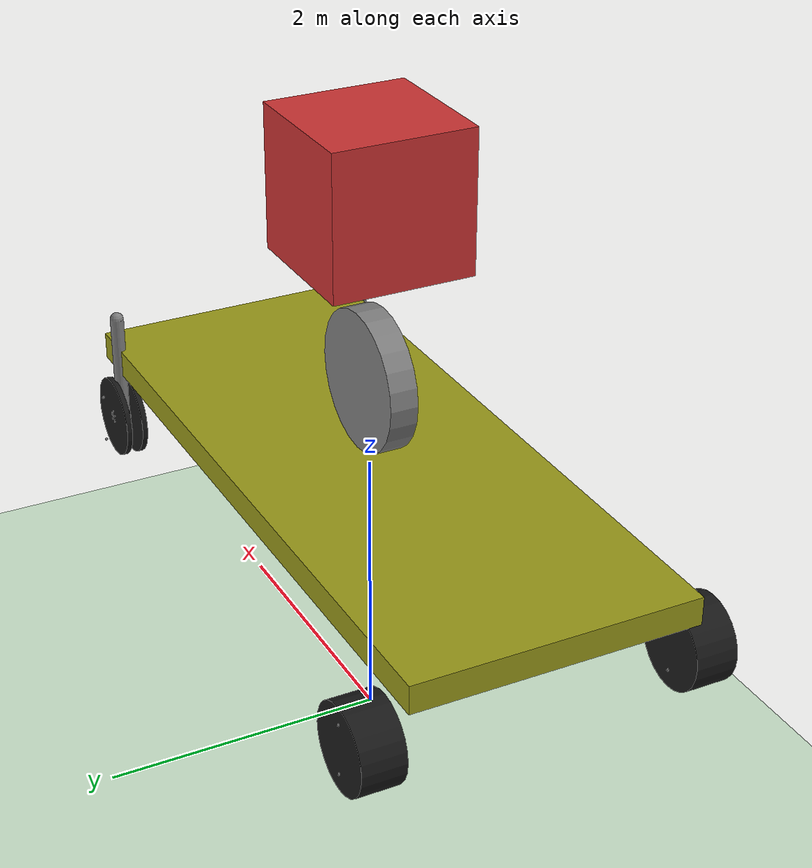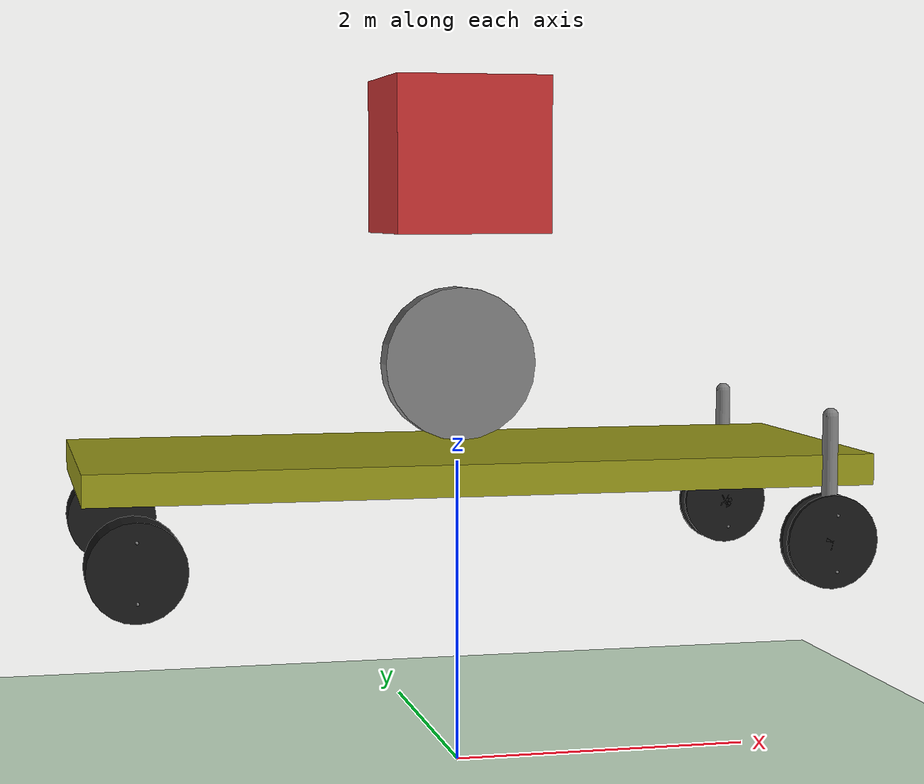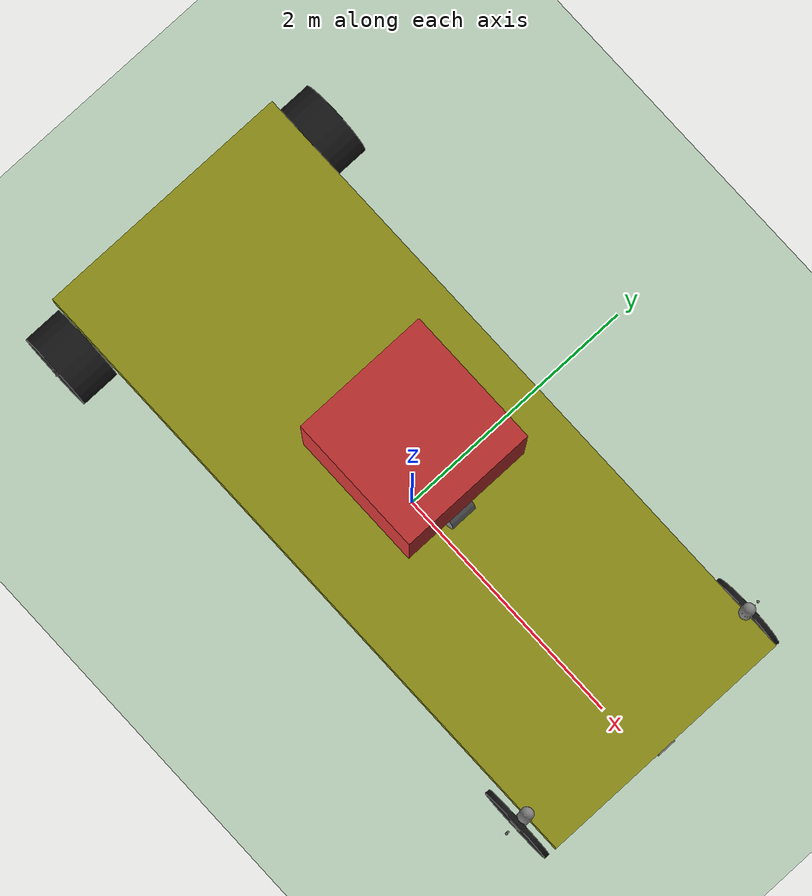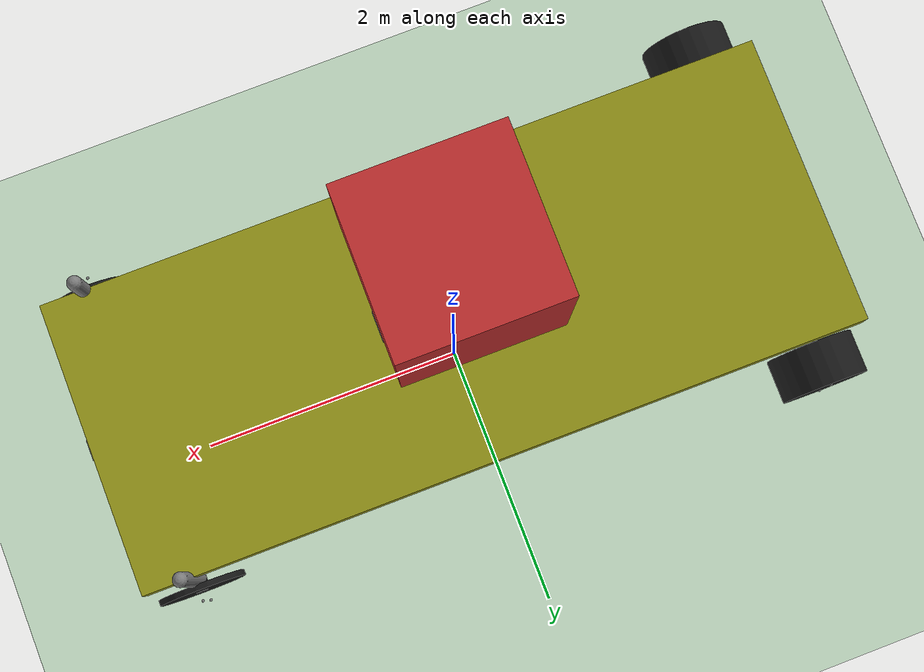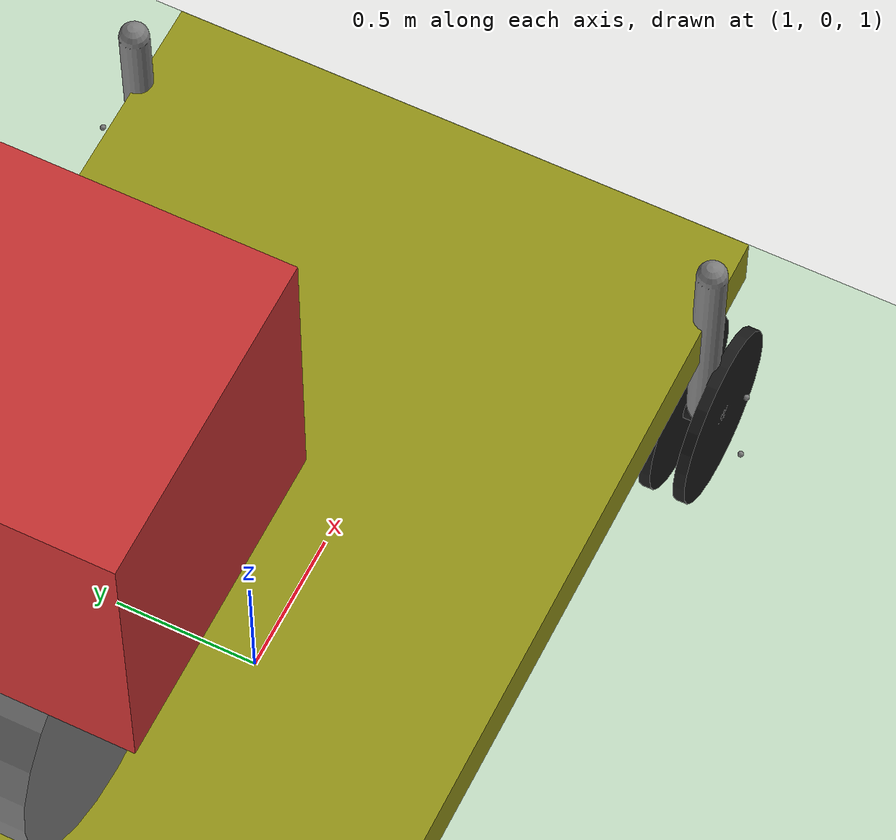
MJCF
<mujoco model="rover4We (v0.2)">

    <compiler inertiafromgeom="true" angle="degree"/>
	<option	timestep="0.006" gravity="0 0 -9.81"/>

	<asset>
		<material name="MatWheel" specular="1" rgba=".1 .1 .1 1"/>
		<material name="MatBody" specular="1" rgba=".6 .6 .1 1"/>
	</asset>

	<default>
		<!--making every geom collidable. expect those that dont are default-->
		<geom contype="1" conaffinity="1"/>
	</default>

	<default class="main">
		<!--solver impedance and reference(?) for ackerman equality constraint-->
		<!--default solimp: "0.900 0.950 0.001"-->
		<!--default solref: "0.020 1.000"-->
		<!--solref: (timeconst, dampratio)
			b = 2 / (dmax * timeconst)
			k = d(r) / (dmax * dmax * timeconst * timeconst * dampratio * dampratio)
		-->
		<equality solimp="0.9950 0.9990 0.0001" solref="0.0100 0.7500"/>
	</default>

	<visual>
		<headlight active="1"/>
		<scale camera=".5"/>
		<map znear="0.001" zfar="1000"/>
	</visual>

    <worldbody>
		<geom conaffinity="1" condim="3" name="floor" pos="0 0 0" rgba="0.8 0.9 0.8 1" size="0 0 0.125" type="plane"/>

		<body name="rover" pos="0 0 2">

			<light name="lamp" active="true" directional="true" cutoff="4" exponent="20" diffuse="1 1 1" specular="0 0 0" pos="0 0 2.5" dir="0 0 -1 "/>

			<camera name="first-person" mode="fixed" pos=".22 0 .08" euler="180 -133 -90" fovy="90"/>

			<joint name="centroid" type="free" pos="0 0 0"/>
            <geom name="rover-body" type="box" pos="0 0 0" size="2.5 1 0.1" mass="12" material="MatBody"/>
			<site type="box" size=".01 .07 .07" pos="2.5 0 0"/>
            <site name="load_sensor_1" pos="2.45 0.9 -0.1" size ="0.01 0.01 0.01" type="box" rgba="0.7 0.2 0.4 0.4" />
            <site name="load_sensor_2" pos="2.45 -0.9 -0.1" size ="0.01 0.01 0.01" type="box" rgba="0.7 0.2 0.4 0.4" />
            <site name="load_sensor_3" pos="-2.45 0.9 -0.1" size ="0.01 0.01 0.01" type="box" rgba="0.7 0.2 0.4 0.4" />
            <site name="load_sensor_4" pos="-2.45 -0.9 -0.1" size ="0.01 0.01 0.01" type="box" rgba="0.7 0.2 0.4 0.4" />
            <site name="plate_imu" pos="0 0 0" size ="0.01" type="sphere" rgba="0.7 0.2 0.9 0.5" />
            <body name="r-l-wheel" pos="-2.2 1 -0.45">
                <joint name="r-l-drive-hinge" type="hinge" pos="0 0 0" axis="0 1 0" damping="0.01" />
                <geom type="cylinder" size="0.3" fromto="0 0 0 0 0.3 0" mass=".125" material="MatWheel" condim="4"/>
				<site size=".01" pos="0 0.3 0.18"/>
				<site size=".01" pos="0 0.3 -0.18"/>
				<site size=".01" pos="0 0 0.18"/>
				<site size=".01" pos="0 0 -0.18"/>
            </body>
            <body name="r-r-wheel" pos="-2.2 -1 -0.45">
                <joint name="r-r-drive-hinge" type="hinge" pos="0 0 0" axis="0 1 0" damping="0.01"/>
                <geom type="cylinder" size="0.3" fromto="0 0 0 0 -0.3 0" mass=".125" material="MatWheel" condim="4"/>
				<site size=".01" pos="0 -0.3 0.18"/>
				<site size=".01" pos="0 -0.3 -0.18"/>
				<site size=".01" pos="0 0 0.18"/>
				<site size=".01" pos="0 0 -0.18"/>
            </body>
			<body name="ghost-steer-wheel" pos="0 0 0.65">
                <joint name="ghost-steer-hinge" type="hinge" pos="0 0 0" axis="0 0 1" limited="true" range="-30 30" damping="0"/>
				<geom type="cylinder" size="0.5 0.1" axisangle="1 0 0 90" contype="2" conaffinity="2" mass="0.2"/>
			</body>
			<body name="f-l-wheel" pos="2.2 1 -0.45">
				<geom type="capsule" size = ".05" fromto="0 0 0 0 0 .8" contype="2" conaffinity="2"/>
				<joint name="f-l-steer-hinge" type="hinge" pos="0 0 0" axis="0 0 1" damping="0.01" limited="true" range="-60 60"/>
				<body>
					<geom type="cylinder" size=".05" fromto="0 -0.08 0 0 0.08 0" mass=".125" material="MatWheel"/>
					<body>
						<joint name="f-l-drive-hinge-1" type="hinge" pos="0 0 0" axis="0 1 0" damping="0.01"/>
						<geom type="cylinder" size=".3" fromto="0 -0.08 0 0 -0.04 0" mass=".125" material="MatWheel" condim="4"/>
					<site size=".01" pos="0 -0.15  0.18"/>
					<site size=".01" pos="0 -0.15 -0.18"/>
					</body>
					<body>
						<joint name="f-l-drive-hinge-2" type="hinge" pos="0 0 0" axis="0 1 0" damping="0.01"/>
						<geom type="cylinder" size=".3" fromto="0 .04 0 0 0.08 0" mass=".125" material="MatWheel" condim="4"/>
						<site size=".01" pos="0  0.15  0.18"/>
						<site size=".01" pos="0  0.15 -0.18"/>
					</body>
				</body>
			</body>
			<body name="f-r-wheel" pos="2.2 -1 -0.45">
				<geom type="capsule" size = ".05" fromto="0 0 0 0 0 .8" contype="2" conaffinity="2"/>
				<joint name="f-r-steer-hinge" type="hinge" pos="0 0 0" axis="0 0 1" damping="0.01" limited="true" range="-60 60"/>

				<body>
					<geom type="cylinder" size=".05" fromto="0 -0.08 0 0 0.08 0" mass=".125" material="MatWheel"/>
					<body>
						<joint name="f-l-drive-hinge-3" type="hinge" pos="0 0 0" axis="0 1 0" damping="0.01"/>
						<geom type="cylinder" size=".3" fromto="0 -0.08 0 0 -0.04 0" mass=".125" material="MatWheel" condim="4"/>
					<site size=".01" pos="0 -0.15  0.18"/>
					<site size=".01" pos="0 -0.15 -0.18"/>
					</body>
					<body>
						<joint name="f-l-drive-hinge-4" type="hinge" pos="0 0 0" axis="0 1 0" damping="0.01"/>
						<geom type="cylinder" size=".3" fromto="0 0.04 0 0 0.08 0" mass=".125" material="MatWheel" condim="4"/>
						<site size=".01" pos="0  0.15  0.18"/>
						<site size=".01" pos="0  0.15 -0.18"/>
					</body>
				</body>
			</body>

        </body>
        <body name="box" pos="0 0 4">
            <geom name="box_geom" type="box" size="0.5 0.5 0.5" mass="1" friction="0.4" rgba="0.8 0.2 0.2 1" condim="3"/>
            <inertial mass="1" pos="0.25 0.25 0.25" diaginertia="0.0833 0.0833 0.0833"/>
            <joint name="box_free" type="free"/> <!-- Free motion -->
        </body>
    </worldbody>

	<tendon>
		<fixed name="rear-differential">
			<joint joint="r-l-drive-hinge" coef="1"/>
			<joint joint="r-r-drive-hinge" coef="1"/>
		</fixed>
	</tendon>

    <actuator>
        <motor name="drive" tendon="rear-differential" ctrllimited="true" ctrlrange="0.0 1.0" gear="8"/>
        <motor name="brake" tendon="rear-differential" ctrllimited="true" ctrlrange="-1.0 0.0" gear="8"/>
		<position name="ghost-steer" joint="ghost-steer-hinge" ctrllimited="true" ctrlrange="-.5 .5" gear="10"/>
    </actuator>
    <sensor>
        <force name="load_sensor_1_1" site="load_sensor_1" />
        <force name="load_sensor_2_2" site="load_sensor_2" />
        <force name="load_sensor_3_3" site="load_sensor_3" />
        <force name="load_sensor_4_4" site="load_sensor_4" />
        <gyro name="plate_gyro_sensor" site="plate_imu" />
        <accelerometer name="plate_accel_sensor" site="plate_imu" />
    </sensor>
	<!--
		joint1: y
		joint2: x
		polycoef: a0 a1 a2 a3 a4
		y-y0 = a0 + a1*(x-x0) + a2*(x-x0)^2 + a3*(x-x0)^3 + a4*(x-x0)^4
	-->
	<equality>
		<joint name="f-l-steer-hinge" joint1="f-l-steer-hinge" joint2="ghost-steer-hinge" polycoef="0.000093610018132620019 2.0041497325730204 1.4716131190668178 -1.0929725380842041 -10.2252012765547819" class="main"/>
		<joint name="f-r-steer-hinge" joint1="f-r-steer-hinge" joint2="ghost-steer-hinge" polycoef="-0.00017013070152971507 2.0039379507086514 -1.4684576386267671 -1.0901354124362155 10.1974185558159771" class="main"/>
	</equality>

</mujoco>
